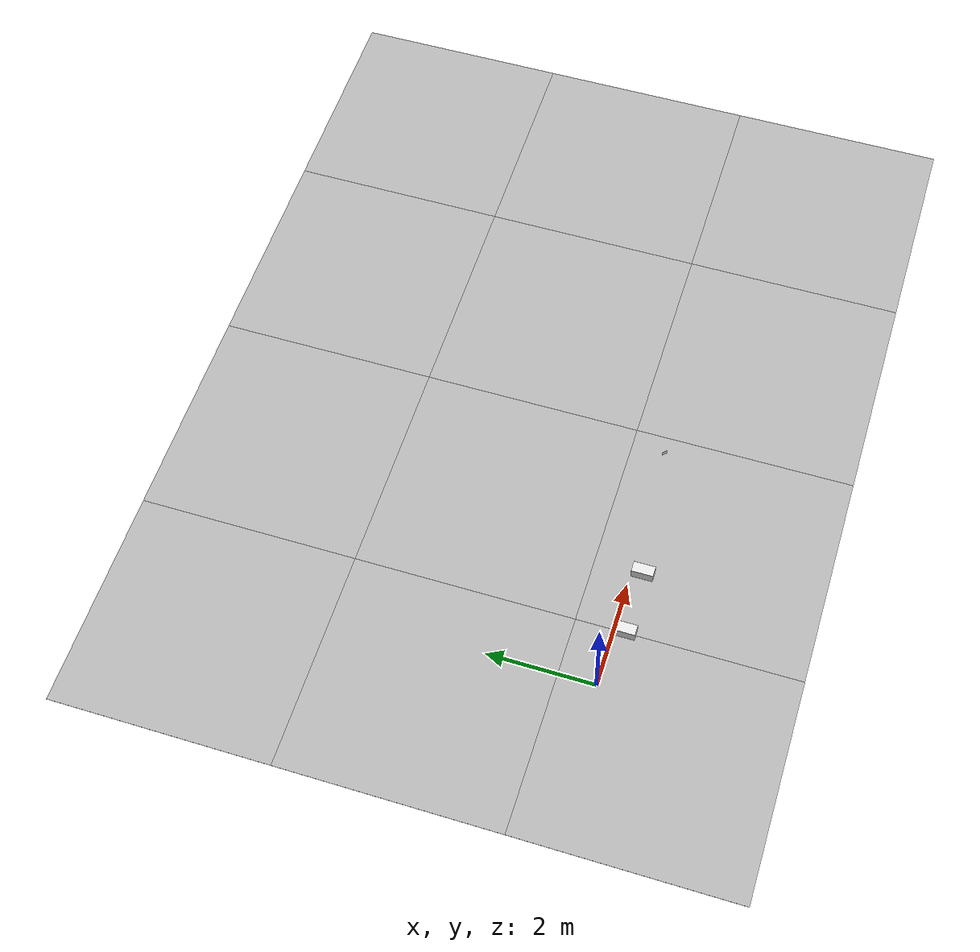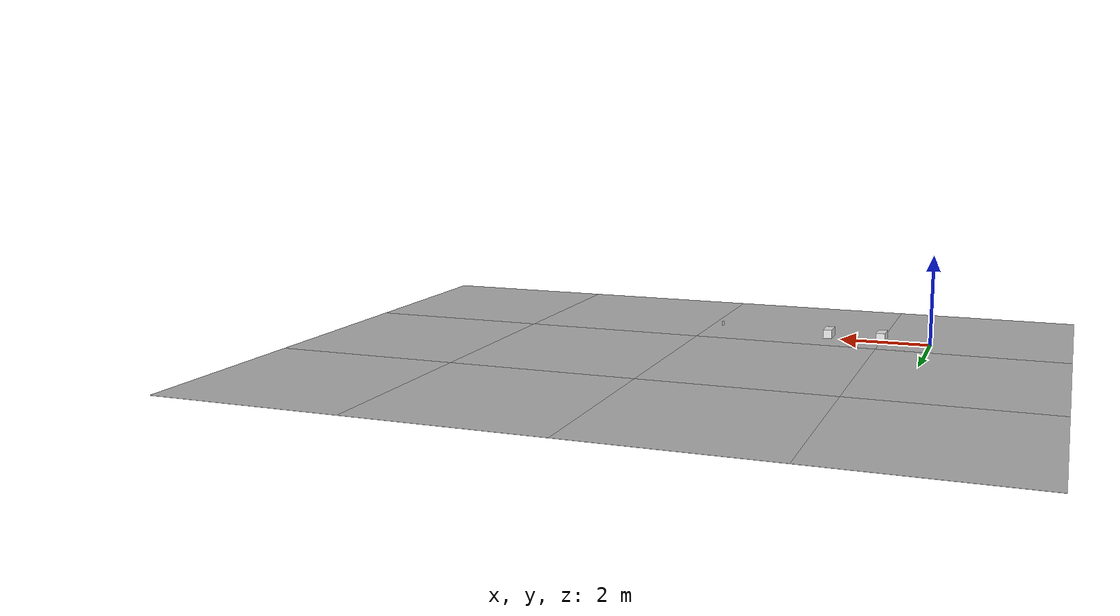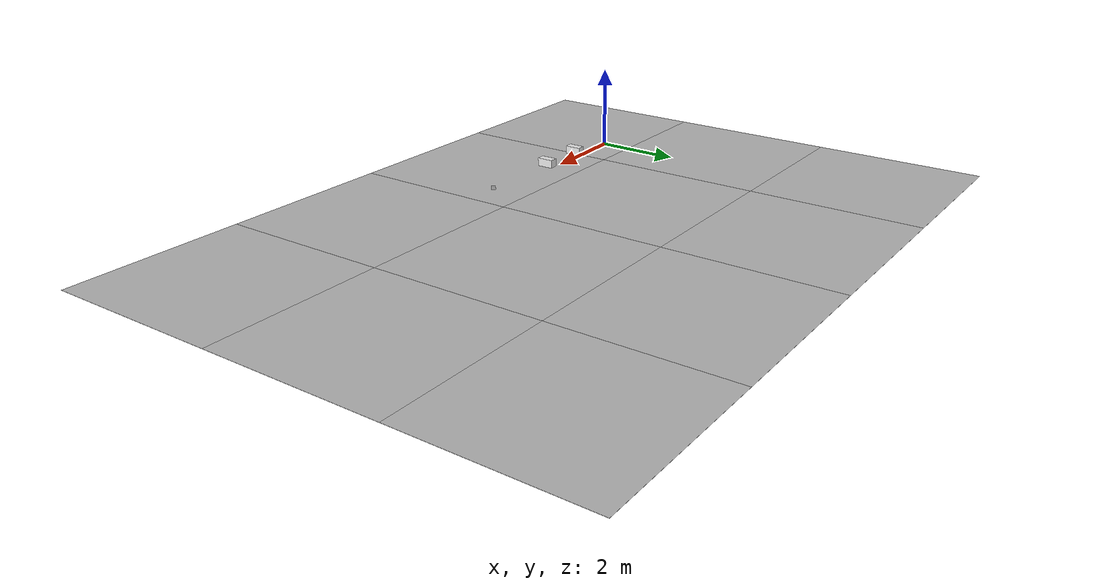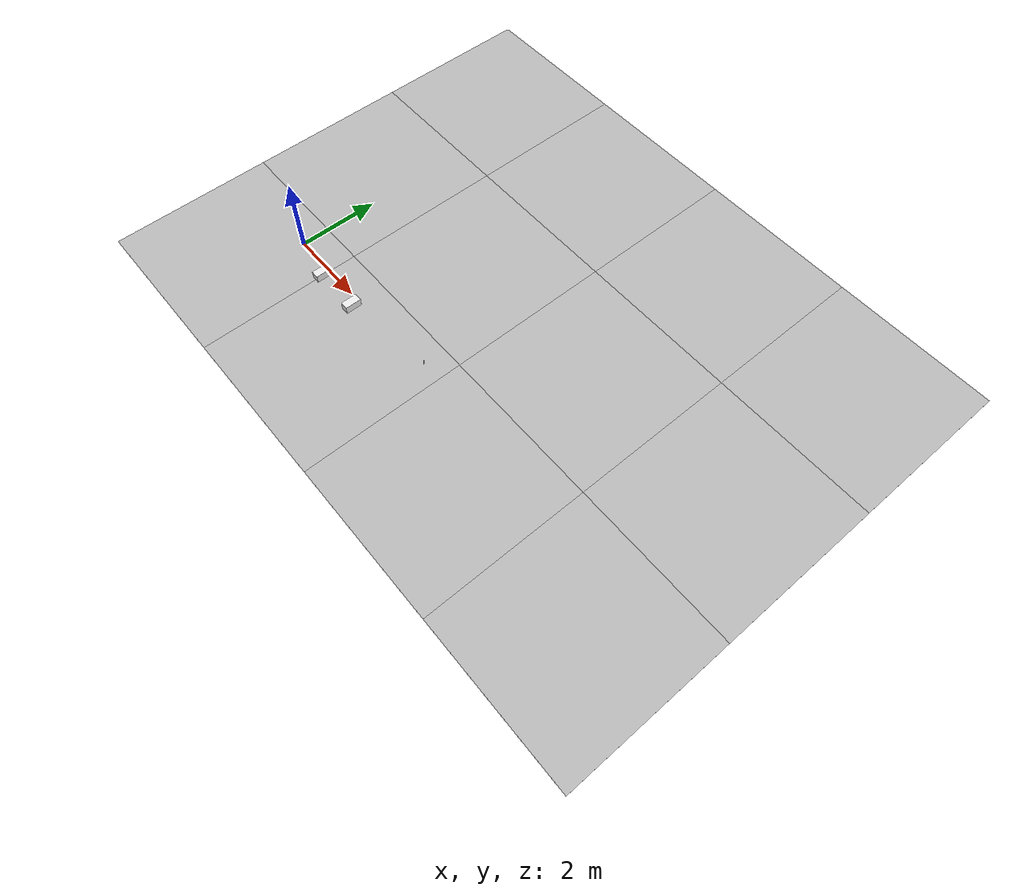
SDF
<sdf version='1.6'><world name='default'>
    <light name='sun_light' type='directional'>
      <pose frame=''>0 0 10 0 -0 0</pose>
      <diffuse>0.5 0.5 0.5 1</diffuse>
      <specular>0.1 0.1 0.1 1</specular>
      <direction>0.1 0.1 -0.9</direction>
      <attenuation>
        <range>20</range>
        <constant>0.5</constant>
        <linear>0.01</linear>
        <quadratic>0.001</quadratic>
      </attenuation>
      <cast_shadows>1</cast_shadows>
    </light>

    <model name='Tile/0-0'>
      <static>1</static>
      <link name='link'>
        <collision name='collision'>
          <geometry>
            <plane>
              <normal>0 0 1</normal>
              <size>4.096 4.096</size>
            </plane>
          </geometry>
          <surface>
            <friction>
              <ode>
                <mu>100</mu>
                <mu2>50</mu2>
              </ode>
              <torsional>
                <ode/>
              </torsional>
            </friction>
            <contact>
              <ode/>
            </contact>
            <bounce/>
          </surface>
          <max_contacts>10</max_contacts>
        </collision>
        <visual name='visual'>
          <cast_shadows>0</cast_shadows>
          <geometry>
            <plane>
              <normal>0 0 1</normal>
              <size>4.096 4.096</size>
            </plane>
          </geometry>
          <material>
            <script>
              <uri>file://materials/scripts</uri>
              <uri>file://materials/textures</uri>
              <name>Tile/e76a1247feadb55e7163eea9e5c2095798e9bb8efcf89ca0afca8bb3570f9274</name>
            </script>
          </material>
        </visual>
        <self_collide>0</self_collide>
        <enable_wind>0</enable_wind>
        <kinematic>0</kinematic>
      </link>
      <pose frame=''>-0.952 -1.3519999999999999 0 0 -0 0</pose>
    </model>

    <model name='Tile/0-1'>
      <static>1</static>
      <link name='link'>
        <collision name='collision'>
          <geometry>
            <plane>
              <normal>0 0 1</normal>
              <size>4.096 4.096</size>
            </plane>
          </geometry>
          <surface>
            <friction>
              <ode>
                <mu>100</mu>
                <mu2>50</mu2>
              </ode>
              <torsional>
                <ode/>
              </torsional>
            </friction>
            <contact>
              <ode/>
            </contact>
            <bounce/>
          </surface>
          <max_contacts>10</max_contacts>
        </collision>
        <visual name='visual'>
          <cast_shadows>0</cast_shadows>
          <geometry>
            <plane>
              <normal>0 0 1</normal>
              <size>4.096 4.096</size>
            </plane>
          </geometry>
          <material>
            <script>
              <uri>file://materials/scripts</uri>
              <uri>file://materials/textures</uri>
              <name>Tile/5eab350b8220ac9944dbdfa4ac3288c7c17e24c3bf5df0dfcf6173d64dae00a1</name>
            </script>
          </material>
        </visual>
        <self_collide>0</self_collide>
        <enable_wind>0</enable_wind>
        <kinematic>0</kinematic>
      </link>
      <pose frame=''>-0.952 2.744 0 0 -0 0</pose>
    </model>

    <model name='Tile/0-2'>
      <static>1</static>
      <link name='link'>
        <collision name='collision'>
          <geometry>
            <plane>
              <normal>0 0 1</normal>
              <size>4.096 4.096</size>
            </plane>
          </geometry>
          <surface>
            <friction>
              <ode>
                <mu>100</mu>
                <mu2>50</mu2>
              </ode>
              <torsional>
                <ode/>
              </torsional>
            </friction>
            <contact>
              <ode/>
            </contact>
            <bounce/>
          </surface>
          <max_contacts>10</max_contacts>
        </collision>
        <visual name='visual'>
          <cast_shadows>0</cast_shadows>
          <geometry>
            <plane>
              <normal>0 0 1</normal>
              <size>4.096 4.096</size>
            </plane>
          </geometry>
          <material>
            <script>
              <uri>file://materials/scripts</uri>
              <uri>file://materials/textures</uri>
              <name>Tile/5eab350b8220ac9944dbdfa4ac3288c7c17e24c3bf5df0dfcf6173d64dae00a1</name>
            </script>
          </material>
        </visual>
        <self_collide>0</self_collide>
        <enable_wind>0</enable_wind>
        <kinematic>0</kinematic>
      </link>
      <pose frame=''>-0.952 6.84 0 0 -0 0</pose>
    </model>

    <model name='Tile/1-0'>
      <static>1</static>
      <link name='link'>
        <collision name='collision'>
          <geometry>
            <plane>
              <normal>0 0 1</normal>
              <size>4.096 4.096</size>
            </plane>
          </geometry>
          <surface>
            <friction>
              <ode>
                <mu>100</mu>
                <mu2>50</mu2>
              </ode>
              <torsional>
                <ode/>
              </torsional>
            </friction>
            <contact>
              <ode/>
            </contact>
            <bounce/>
          </surface>
          <max_contacts>10</max_contacts>
        </collision>
        <visual name='visual'>
          <cast_shadows>0</cast_shadows>
          <geometry>
            <plane>
              <normal>0 0 1</normal>
              <size>4.096 4.096</size>
            </plane>
          </geometry>
          <material>
            <script>
              <uri>file://materials/scripts</uri>
              <uri>file://materials/textures</uri>
              <name>Tile/3198e3f69d14773c300438a0857a1c70ac62d0e2bdd0a136aab3978967e4f453</name>
            </script>
          </material>
        </visual>
        <self_collide>0</self_collide>
        <enable_wind>0</enable_wind>
        <kinematic>0</kinematic>
      </link>
      <pose frame=''>3.144 -1.3519999999999999 0 0 -0 0</pose>
    </model>

    <model name='Tile/1-1'>
      <static>1</static>
      <link name='link'>
        <collision name='collision'>
          <geometry>
            <plane>
              <normal>0 0 1</normal>
              <size>4.096 4.096</size>
            </plane>
          </geometry>
          <surface>
            <friction>
              <ode>
                <mu>100</mu>
                <mu2>50</mu2>
              </ode>
              <torsional>
                <ode/>
              </torsional>
            </friction>
            <contact>
              <ode/>
            </contact>
            <bounce/>
          </surface>
          <max_contacts>10</max_contacts>
        </collision>
        <visual name='visual'>
          <cast_shadows>0</cast_shadows>
          <geometry>
            <plane>
              <normal>0 0 1</normal>
              <size>4.096 4.096</size>
            </plane>
          </geometry>
          <material>
            <script>
              <uri>file://materials/scripts</uri>
              <uri>file://materials/textures</uri>
              <name>Tile/5d7c56861dd2e05632f6c194cb7a8f686f14d49479e7678fc5eab5ec6691611e</name>
            </script>
          </material>
        </visual>
        <self_collide>0</self_collide>
        <enable_wind>0</enable_wind>
        <kinematic>0</kinematic>
      </link>
      <pose frame=''>3.144 2.744 0 0 -0 0</pose>
    </model>

    <model name='Tile/1-2'>
      <static>1</static>
      <link name='link'>
        <collision name='collision'>
          <geometry>
            <plane>
              <normal>0 0 1</normal>
              <size>4.096 4.096</size>
            </plane>
          </geometry>
          <surface>
            <friction>
              <ode>
                <mu>100</mu>
                <mu2>50</mu2>
              </ode>
              <torsional>
                <ode/>
              </torsional>
            </friction>
            <contact>
              <ode/>
            </contact>
            <bounce/>
          </surface>
          <max_contacts>10</max_contacts>
        </collision>
        <visual name='visual'>
          <cast_shadows>0</cast_shadows>
          <geometry>
            <plane>
              <normal>0 0 1</normal>
              <size>4.096 4.096</size>
            </plane>
          </geometry>
          <material>
            <script>
              <uri>file://materials/scripts</uri>
              <uri>file://materials/textures</uri>
              <name>Tile/5eab350b8220ac9944dbdfa4ac3288c7c17e24c3bf5df0dfcf6173d64dae00a1</name>
            </script>
          </material>
        </visual>
        <self_collide>0</self_collide>
        <enable_wind>0</enable_wind>
        <kinematic>0</kinematic>
      </link>
      <pose frame=''>3.144 6.84 0 0 -0 0</pose>
    </model>

    <model name='Tile/2-0'>
      <static>1</static>
      <link name='link'>
        <collision name='collision'>
          <geometry>
            <plane>
              <normal>0 0 1</normal>
              <size>4.096 4.096</size>
            </plane>
          </geometry>
          <surface>
            <friction>
              <ode>
                <mu>100</mu>
                <mu2>50</mu2>
              </ode>
              <torsional>
                <ode/>
              </torsional>
            </friction>
            <contact>
              <ode/>
            </contact>
            <bounce/>
          </surface>
          <max_contacts>10</max_contacts>
        </collision>
        <visual name='visual'>
          <cast_shadows>0</cast_shadows>
          <geometry>
            <plane>
              <normal>0 0 1</normal>
              <size>4.096 4.096</size>
            </plane>
          </geometry>
          <material>
            <script>
              <uri>file://materials/scripts</uri>
              <uri>file://materials/textures</uri>
              <name>Tile/c25bd3ca5fd35d74fd81066bcc98fa60ec0b83e1570ede2b12e6eab342f45577</name>
            </script>
          </material>
        </visual>
        <self_collide>0</self_collide>
        <enable_wind>0</enable_wind>
        <kinematic>0</kinematic>
      </link>
      <pose frame=''>7.24 -1.3519999999999999 0 0 -0 0</pose>
    </model>

    <model name='Tile/2-1'>
      <static>1</static>
      <link name='link'>
        <collision name='collision'>
          <geometry>
            <plane>
              <normal>0 0 1</normal>
              <size>4.096 4.096</size>
            </plane>
          </geometry>
          <surface>
            <friction>
              <ode>
                <mu>100</mu>
                <mu2>50</mu2>
              </ode>
              <torsional>
                <ode/>
              </torsional>
            </friction>
            <contact>
              <ode/>
            </contact>
            <bounce/>
          </surface>
          <max_contacts>10</max_contacts>
        </collision>
        <visual name='visual'>
          <cast_shadows>0</cast_shadows>
          <geometry>
            <plane>
              <normal>0 0 1</normal>
              <size>4.096 4.096</size>
            </plane>
          </geometry>
          <material>
            <script>
              <uri>file://materials/scripts</uri>
              <uri>file://materials/textures</uri>
              <name>Tile/52a9ba2946025facf36d0570f9120c4c0f6d8341a722717abc812db25e666522</name>
            </script>
          </material>
        </visual>
        <self_collide>0</self_collide>
        <enable_wind>0</enable_wind>
        <kinematic>0</kinematic>
      </link>
      <pose frame=''>7.24 2.744 0 0 -0 0</pose>
    </model>

    <model name='Tile/2-2'>
      <static>1</static>
      <link name='link'>
        <collision name='collision'>
          <geometry>
            <plane>
              <normal>0 0 1</normal>
              <size>4.096 4.096</size>
            </plane>
          </geometry>
          <surface>
            <friction>
              <ode>
                <mu>100</mu>
                <mu2>50</mu2>
              </ode>
              <torsional>
                <ode/>
              </torsional>
            </friction>
            <contact>
              <ode/>
            </contact>
            <bounce/>
          </surface>
          <max_contacts>10</max_contacts>
        </collision>
        <visual name='visual'>
          <cast_shadows>0</cast_shadows>
          <geometry>
            <plane>
              <normal>0 0 1</normal>
              <size>4.096 4.096</size>
            </plane>
          </geometry>
          <material>
            <script>
              <uri>file://materials/scripts</uri>
              <uri>file://materials/textures</uri>
              <name>Tile/5eab350b8220ac9944dbdfa4ac3288c7c17e24c3bf5df0dfcf6173d64dae00a1</name>
            </script>
          </material>
        </visual>
        <self_collide>0</self_collide>
        <enable_wind>0</enable_wind>
        <kinematic>0</kinematic>
      </link>
      <pose frame=''>7.24 6.84 0 0 -0 0</pose>
    </model>

    <model name='Tile/3-0'>
      <static>1</static>
      <link name='link'>
        <collision name='collision'>
          <geometry>
            <plane>
              <normal>0 0 1</normal>
              <size>4.096 4.096</size>
            </plane>
          </geometry>
          <surface>
            <friction>
              <ode>
                <mu>100</mu>
                <mu2>50</mu2>
              </ode>
              <torsional>
                <ode/>
              </torsional>
            </friction>
            <contact>
              <ode/>
            </contact>
            <bounce/>
          </surface>
          <max_contacts>10</max_contacts>
        </collision>
        <visual name='visual'>
          <cast_shadows>0</cast_shadows>
          <geometry>
            <plane>
              <normal>0 0 1</normal>
              <size>4.096 4.096</size>
            </plane>
          </geometry>
          <material>
            <script>
              <uri>file://materials/scripts</uri>
              <uri>file://materials/textures</uri>
              <name>Tile/5eab350b8220ac9944dbdfa4ac3288c7c17e24c3bf5df0dfcf6173d64dae00a1</name>
            </script>
          </material>
        </visual>
        <self_collide>0</self_collide>
        <enable_wind>0</enable_wind>
        <kinematic>0</kinematic>
      </link>
      <pose frame=''>11.336 -1.3519999999999999 0 0 -0 0</pose>
    </model>

    <model name='Tile/3-1'>
      <static>1</static>
      <link name='link'>
        <collision name='collision'>
          <geometry>
            <plane>
              <normal>0 0 1</normal>
              <size>4.096 4.096</size>
            </plane>
          </geometry>
          <surface>
            <friction>
              <ode>
                <mu>100</mu>
                <mu2>50</mu2>
              </ode>
              <torsional>
                <ode/>
              </torsional>
            </friction>
            <contact>
              <ode/>
            </contact>
            <bounce/>
          </surface>
          <max_contacts>10</max_contacts>
        </collision>
        <visual name='visual'>
          <cast_shadows>0</cast_shadows>
          <geometry>
            <plane>
              <normal>0 0 1</normal>
              <size>4.096 4.096</size>
            </plane>
          </geometry>
          <material>
            <script>
              <uri>file://materials/scripts</uri>
              <uri>file://materials/textures</uri>
              <name>Tile/5eab350b8220ac9944dbdfa4ac3288c7c17e24c3bf5df0dfcf6173d64dae00a1</name>
            </script>
          </material>
        </visual>
        <self_collide>0</self_collide>
        <enable_wind>0</enable_wind>
        <kinematic>0</kinematic>
      </link>
      <pose frame=''>11.336 2.744 0 0 -0 0</pose>
    </model>

    <model name='Tile/3-2'>
      <static>1</static>
      <link name='link'>
        <collision name='collision'>
          <geometry>
            <plane>
              <normal>0 0 1</normal>
              <size>4.096 4.096</size>
            </plane>
          </geometry>
          <surface>
            <friction>
              <ode>
                <mu>100</mu>
                <mu2>50</mu2>
              </ode>
              <torsional>
                <ode/>
              </torsional>
            </friction>
            <contact>
              <ode/>
            </contact>
            <bounce/>
          </surface>
          <max_contacts>10</max_contacts>
        </collision>
        <visual name='visual'>
          <cast_shadows>0</cast_shadows>
          <geometry>
            <plane>
              <normal>0 0 1</normal>
              <size>4.096 4.096</size>
            </plane>
          </geometry>
          <material>
            <script>
              <uri>file://materials/scripts</uri>
              <uri>file://materials/textures</uri>
              <name>Tile/5eab350b8220ac9944dbdfa4ac3288c7c17e24c3bf5df0dfcf6173d64dae00a1</name>
            </script>
          </material>
        </visual>
        <self_collide>0</self_collide>
        <enable_wind>0</enable_wind>
        <kinematic>0</kinematic>
      </link>
      <pose frame=''>11.336 6.84 0 0 -0 0</pose>
    </model>

    <model name='Obstacle/-5/0'>
      <pose frame=''>1.1 -0.2 0.1 0 0 -0.0</pose>
      <link name='link'>
        <inertial>
          <mass>10</mass>
          <inertia>
            <ixx>0.166667</ixx>
            <ixy>0</ixy>
            <ixz>0</ixz>
            <iyy>0.166667</iyy>
            <iyz>0</iyz>
            <izz>0.166667</izz>
          </inertia>
        </inertial>
        <collision name='collision'>
          <geometry>
            <box>
              <size>0.2 0.4 0.2</size>
            </box>
          </geometry>
          <max_contacts>10</max_contacts>
          <surface>
            <contact>
              <ode/>
            </contact>
            <bounce/>
            <friction>
              <torsional>
                <ode/>
              </torsional>
              <ode/>
            </friction>
          </surface>
        </collision>
        <visual name='visual'>
          <geometry>
            <box>
              <size>0.2 0.4 0.2</size>
            </box>
          </geometry>
          <material>
            <script>
              <name>Gazebo/White</name>
              <uri>file://media/materials/scripts/gazebo.material</uri>
            </script>
          </material>
        </visual>
        <self_collide>0</self_collide>
        <enable_wind>0</enable_wind>
        <kinematic>0</kinematic>
      </link>
    </model>

    <model name='Obstacle/-10/0'>
      <pose frame=''>2.3000000000000003 -0.2 0.1 0 0 -0.0</pose>
      <link name='link'>
        <inertial>
          <mass>10</mass>
          <inertia>
            <ixx>0.166667</ixx>
            <ixy>0</ixy>
            <ixz>0</ixz>
            <iyy>0.166667</iyy>
            <iyz>0</iyz>
            <izz>0.166667</izz>
          </inertia>
        </inertial>
        <collision name='collision'>
          <geometry>
            <box>
              <size>0.2 0.4 0.2</size>
            </box>
          </geometry>
          <max_contacts>10</max_contacts>
          <surface>
            <contact>
              <ode/>
            </contact>
            <bounce/>
            <friction>
              <torsional>
                <ode/>
              </torsional>
              <ode/>
            </friction>
          </surface>
        </collision>
        <visual name='visual'>
          <geometry>
            <box>
              <size>0.2 0.4 0.2</size>
            </box>
          </geometry>
          <material>
            <script>
              <name>Gazebo/White</name>
              <uri>file://media/materials/scripts/gazebo.material</uri>
            </script>
          </material>
        </visual>
        <self_collide>0</self_collide>
        <enable_wind>0</enable_wind>
        <kinematic>0</kinematic>
      </link>
    </model>

    <model name='Sign/-25'>
      <static>1</static>
      <link name='link'>
        <visual name='visual'>
          <cast_shadows>0</cast_shadows>
          <geometry>
            <plane>
              <normal>0 0 1</normal>
              <size>0.1 0.1</size>
            </plane>
          </geometry>
          <material>
            <script>
              <uri>file://materials/scripts</uri>
              <uri>file://materials/textures</uri>
              <name>Sign/stvo-306</name>
            </script>
          </material>
        </visual>
        <self_collide>0</self_collide>
        <enable_wind>0</enable_wind>
        <kinematic>0</kinematic>
      </link>
      <pose frame=''>4.74350288425444 0.05649711574555982 0.2 1.5707963267948966 0 5.497787143782138</pose>
    </model>
    </world></sdf>
